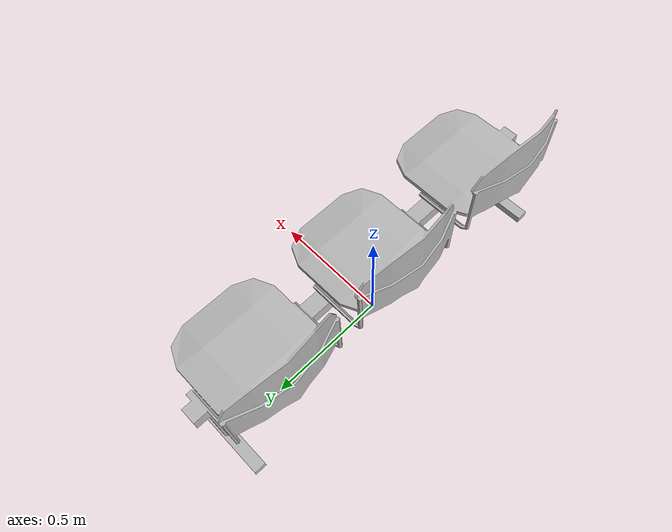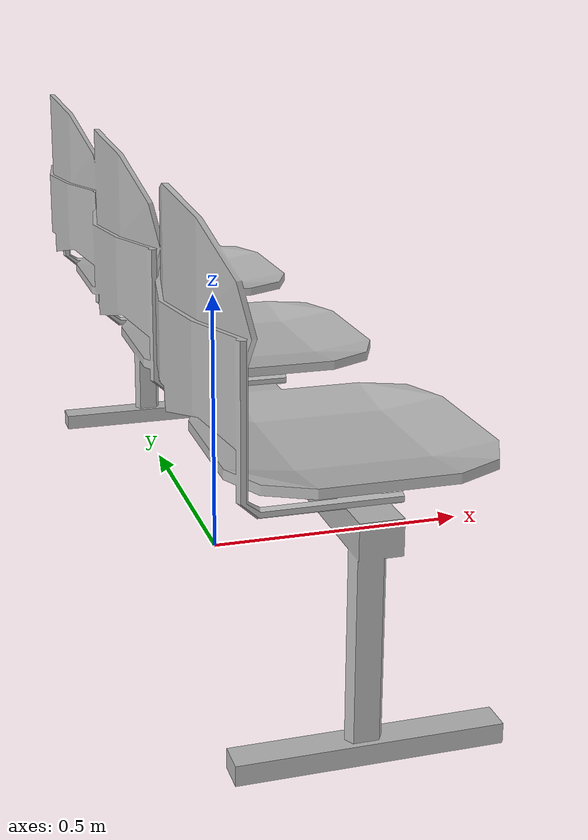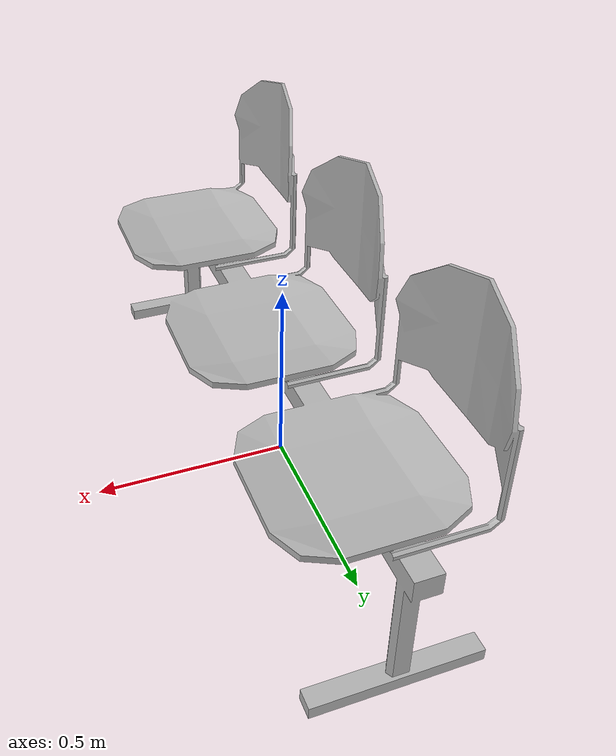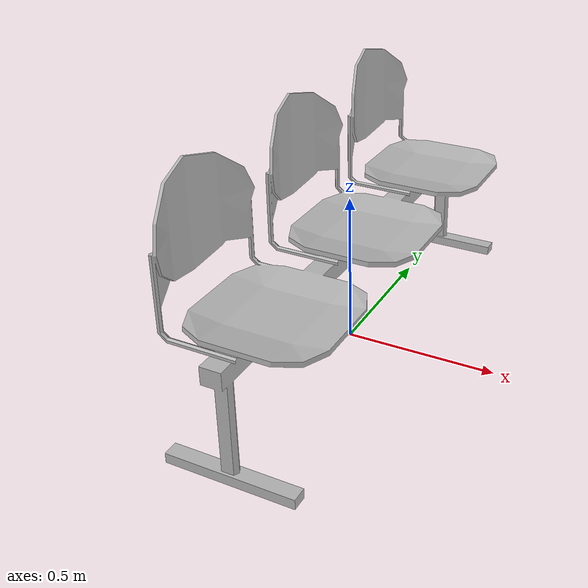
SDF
<?xml version='1.0' encoding='utf-8'?>
<sdf version="1.6">
  <model name="PotatoChipChair">
   <static>true</static>
    <link name="body">
      <pose>0 0 0 0 0 0</pose>

      <visual name="visual">
        <geometry>
          <mesh>
            <uri>model://PotatoChipChair/meshes/PotatoChipChair.obj</uri>
          </mesh>
        </geometry>
      </visual>

      <collision name="collision">
        <geometry>
          <mesh>
            <uri>model://PotatoChipChair/meshes/PotatoChipChair_Col.obj</uri>
          </mesh>
        </geometry>
      </collision>

    </link>
  </model>
</sdf>
